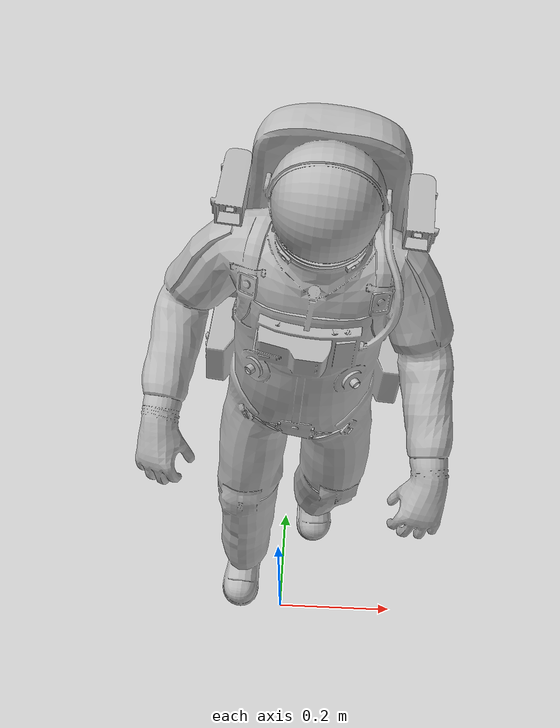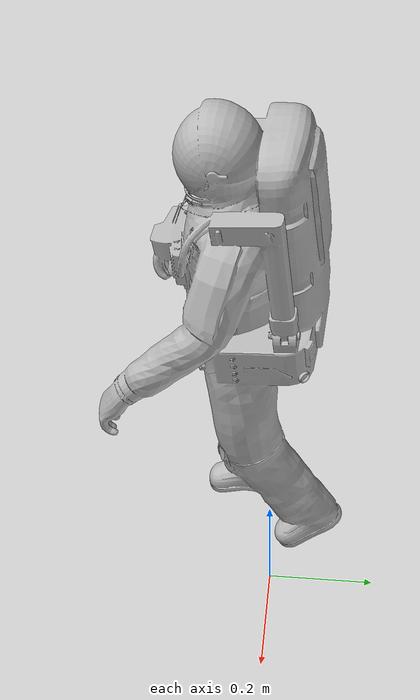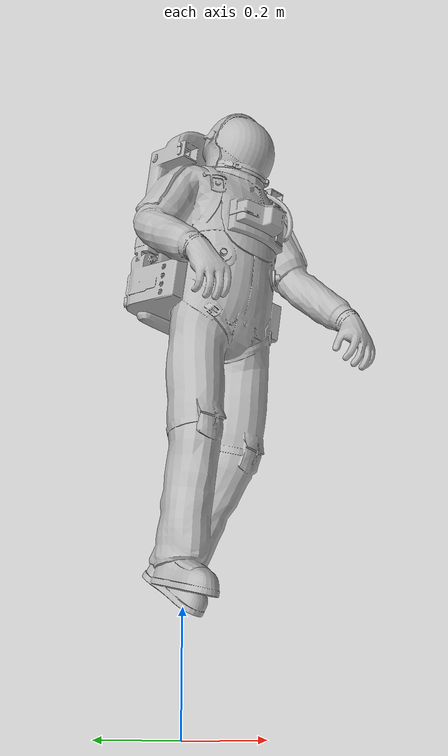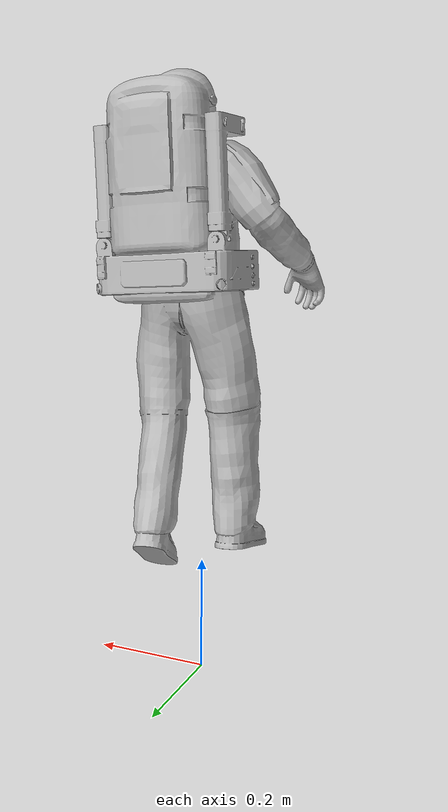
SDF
<?xml version="1.0" ?>
<sdf version='1.4'>
  <model name="astronaut_pro">
      <static>1</static>
        <link name='link_1'>
            <visual name='visual'>
            <pose frame=''>0 0 0 0 0 0</pose>
            <geometry>
            <mesh>
                <uri>model://astronaut_pro/meshes/astronaut_pro.dae</uri>
                <scale>0.0035 0.0035 0.0035</scale>
            </mesh>
            </geometry>
            <cast_shadows>0</cast_shadows>
            <transparency>0</transparency>
        </visual>

        <collision name='collision'>
            <laser_retro>0</laser_retro>
            <pose frame=''>0 0 0 0 0 0</pose>
            <geometry>
            <mesh>
                <uri>model://astronaut_pro/meshes/astronaut_pro.stl</uri>
                <scale>0.0035 0.0035 0.0035</scale>
            </mesh>
            </geometry>
        </collision>
        </link>
  </model>
</sdf>
